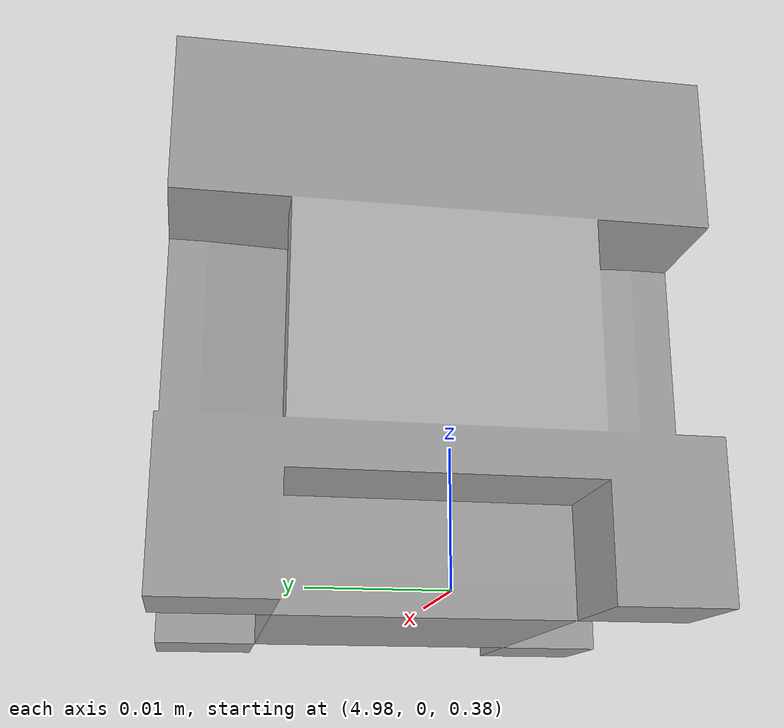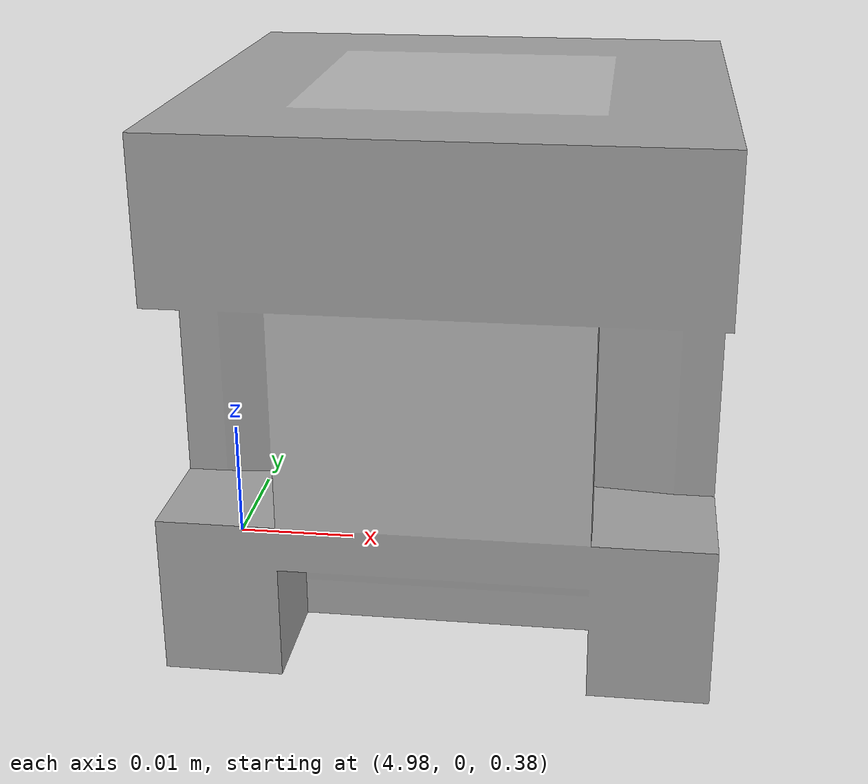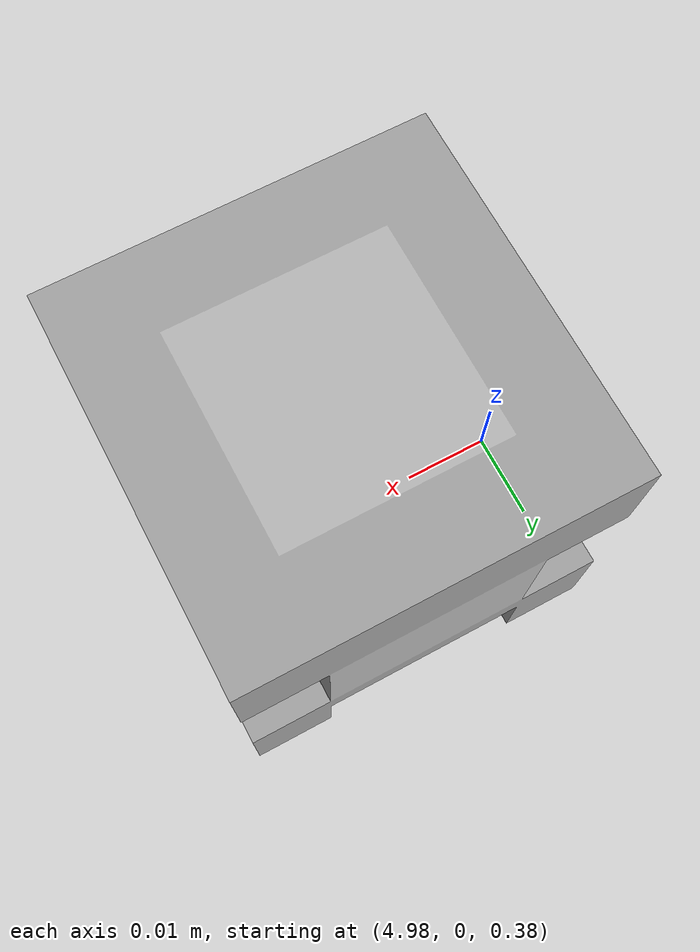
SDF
<?xml version='1.0'?>
<sdf version="1.6">
<model name="cube_cozmo">
  <pose>5.0 0 0.4 0 0 3.14</pose>
  <static>true</static>
    <link name="link">
      <inertial>
        <mass>0.1</mass>
        <inertia> <!-- inertias are tricky to compute -->
          <!-- http://gazebosim.org/tutorials?tut=inertia&cat=build_robot -->
          <ixx>0.0000285536033333</ixx>       <!-- for a box: ixx = 0.083 * mass * (y*y + z*z) -->
          <ixy>0.0</ixy>         <!-- for a box: ixy = 0 -->
          <ixz>0.0</ixz>         <!-- for a box: ixz = 0 -->
          <iyy>0.0000285536033333</iyy>       <!-- for a box: iyy = 0.083 * mass * (x*x + z*z) -->
          <iyz>0.0</iyz>         <!-- for a box: iyz = 0 -->
          <izz>0.0000281535</izz>       <!-- for a box: izz = 0.083 * mass * (x*x + y*y) -->
        </inertia>
      </inertial>
      <collision name="collision">
        <geometry>
          <mesh>
           <uri>model://cube_cozmo/meshes/cube_cozmo.dae</uri>
	  </mesh>
        </geometry>
      </collision>
      <visual name="visual">
        <geometry>
         <mesh>
           <uri>model://cube_cozmo/meshes/cube_cozmo.dae</uri>
	  </mesh>
        </geometry>
      </visual>
    </link>
  </model>
</sdf>
